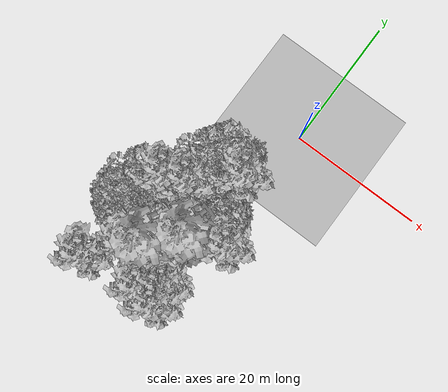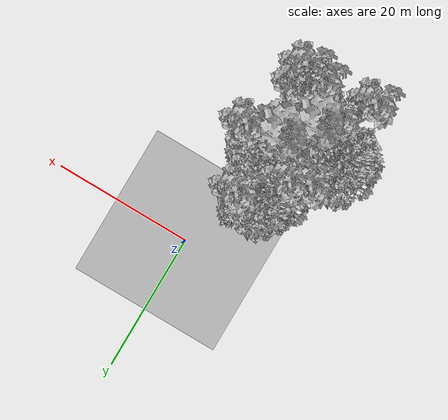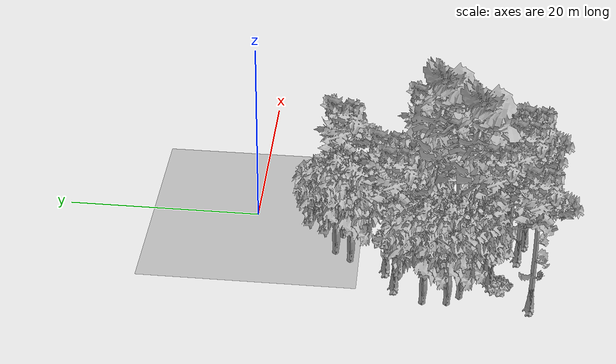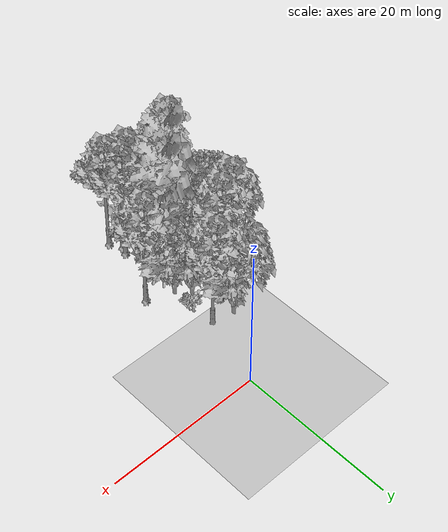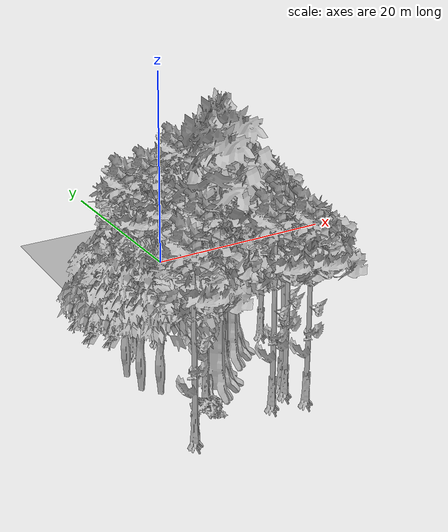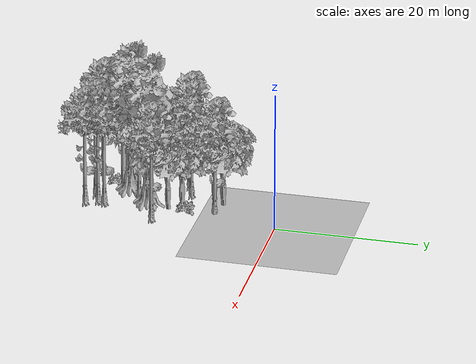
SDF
<sdf version="1.7">
 <world name="default">
  <model name="ground_plane">
   <static>1</static>
   <link name="link">
    <collision name="collision">
     <geometry><plane><normal>0 0 1</normal><size>100 100</size></plane></geometry>
     <surface><contact><ode><min_depth>0.01</min_depth><max_vel>0</max_vel></ode></contact></surface>
    </collision>
    <visual name="grass">
     <cast_shadows>0</cast_shadows>
     <geometry>
      <mesh>
       <scale>0.41000000000000003 0.41000000000000003 0.1</scale>
       <uri>file://grass_plane/meshes/grass_plane.dae</uri>
      </mesh>
     </geometry>
    </visual>
   </link>
  </model>
  <model name="Tree 84">
   <static>1</static>
   <pose>-2.7220117441366014 -9.177676038777747 0 1.57079 -0 0</pose>
   <link name="link">
    <collision name="collision">
     <geometry><mesh><scale>5 5 5</scale><uri>model://tree_9/meshes/tree_9.obj</uri></mesh></geometry>
    </collision>
    <visual name="visual">
     <geometry><mesh><scale>5 5 5</scale><uri>model://tree_9/meshes/tree_9.obj</uri></mesh></geometry>
    </visual>
   </link>
  </model>
  <model name="Tree 140">
   <static>1</static>
   <pose>-3.5608397065718975 -18.911041098502135 0 1.57079 -0 0</pose>
   <link name="link">
    <collision name="collision">
     <geometry><mesh><scale>5 5 5</scale><uri>model://tree_4/meshes/tree_4.obj</uri></mesh></geometry>
    </collision>
    <visual name="visual">
     <geometry><mesh><scale>5 5 5</scale><uri>model://tree_4/meshes/tree_4.obj</uri></mesh></geometry>
    </visual>
   </link>
  </model>
  <model name="Tree 159">
   <static>1</static>
   <pose>-2.783555532988295 -15.857061413306361 0 1.57079 -0 0</pose>
   <link name="link">
    <collision name="collision">
     <geometry><mesh><scale>5 5 5</scale><uri>model://tree_2/meshes/tree_2.obj</uri></mesh></geometry>
    </collision>
    <visual name="visual">
     <geometry><mesh><scale>5 5 5</scale><uri>model://tree_2/meshes/tree_2.obj</uri></mesh></geometry>
    </visual>
   </link>
  </model>
  <model name="Tree 181">
   <static>1</static>
   <pose>-6.9727555615401045 -10.246274128915722 0 1.57079 -0 0</pose>
   <link name="link">
    <collision name="collision">
     <geometry><mesh><scale>5 5 5</scale><uri>model://tree_2/meshes/tree_2.obj</uri></mesh></geometry>
    </collision>
    <visual name="visual">
     <geometry><mesh><scale>5 5 5</scale><uri>model://tree_2/meshes/tree_2.obj</uri></mesh></geometry>
    </visual>
   </link>
  </model>
  <model name="Tree 182">
   <static>1</static>
   <pose>-7.042790322751536 -22.452291825213035 0 1.57079 -0 0</pose>
   <link name="link">
    <collision name="collision">
     <geometry><mesh><scale>5 5 5</scale><uri>model://tree_4/meshes/tree_4.obj</uri></mesh></geometry>
    </collision>
    <visual name="visual">
     <geometry><mesh><scale>5 5 5</scale><uri>model://tree_4/meshes/tree_4.obj</uri></mesh></geometry>
    </visual>
   </link>
  </model>
  <model name="Tree 189">
   <static>1</static>
   <pose>-5.8050835633143265 -8.681269433756626 0 1.57079 -0 0</pose>
   <link name="link">
    <collision name="collision">
     <geometry><mesh><scale>5 5 5</scale><uri>model://tree_2/meshes/tree_2.obj</uri></mesh></geometry>
    </collision>
    <visual name="visual">
     <geometry><mesh><scale>5 5 5</scale><uri>model://tree_2/meshes/tree_2.obj</uri></mesh></geometry>
    </visual>
   </link>
  </model>
  <model name="Tree 204">
   <static>1</static>
   <pose>-7.913164516298025 -13.836802595011413 0 1.57079 -0 0</pose>
   <link name="link">
    <collision name="collision">
     <geometry><mesh><scale>5 5 5</scale><uri>model://tree_9/meshes/tree_9.obj</uri></mesh></geometry>
    </collision>
    <visual name="visual">
     <geometry><mesh><scale>5 5 5</scale><uri>model://tree_9/meshes/tree_9.obj</uri></mesh></geometry>
    </visual>
   </link>
  </model>
  <model name="Tree 210">
   <static>1</static>
   <pose>-4.886920589332988 -26.97479200473081 0 1.57079 -0 0</pose>
   <link name="link">
    <collision name="collision">
     <geometry><mesh><scale>5 5 5</scale><uri>model://tree_9/meshes/tree_9.obj</uri></mesh></geometry>
    </collision>
    <visual name="visual">
     <geometry><mesh><scale>5 5 5</scale><uri>model://tree_9/meshes/tree_9.obj</uri></mesh></geometry>
    </visual>
   </link>
  </model>
  <model name="Tree 225">
   <static>1</static>
   <pose>-4.149420852794513 -14.181908517586436 0 1.57079 -0 0</pose>
   <link name="link">
    <collision name="collision">
     <geometry><mesh><scale>5 5 5</scale><uri>model://tree_2/meshes/tree_2.obj</uri></mesh></geometry>
    </collision>
    <visual name="visual">
     <geometry><mesh><scale>5 5 5</scale><uri>model://tree_2/meshes/tree_2.obj</uri></mesh></geometry>
    </visual>
   </link>
  </model>
  <model name="Tree 240">
   <static>1</static>
   <pose>-12.330793939111345 -28.034754387633765 0 1.57079 -0 0</pose>
   <link name="link">
    <collision name="collision">
     <geometry><mesh><scale>5 5 5</scale><uri>model://tree_9/meshes/tree_9.obj</uri></mesh></geometry>
    </collision>
    <visual name="visual">
     <geometry><mesh><scale>5 5 5</scale><uri>model://tree_9/meshes/tree_9.obj</uri></mesh></geometry>
    </visual>
   </link>
  </model>
  <model name="Tree 257">
   <static>1</static>
   <pose>-11.565295251363658 -21.250219013921956 0 1.57079 -0 0</pose>
   <link name="link">
    <collision name="collision">
     <geometry><mesh><scale>5 5 5</scale><uri>model://tree_2/meshes/tree_2.obj</uri></mesh></geometry>
    </collision>
    <visual name="visual">
     <geometry><mesh><scale>5 5 5</scale><uri>model://tree_2/meshes/tree_2.obj</uri></mesh></geometry>
    </visual>
   </link>
  </model>
  <model name="Tree 286">
   <static>1</static>
   <pose>-5.15922674330546 -20.68508485118914 0 1.57079 -0 0</pose>
   <link name="link">
    <collision name="collision">
     <geometry><mesh><scale>5 5 5</scale><uri>model://tree_9/meshes/tree_9.obj</uri></mesh></geometry>
    </collision>
    <visual name="visual">
     <geometry><mesh><scale>5 5 5</scale><uri>model://tree_9/meshes/tree_9.obj</uri></mesh></geometry>
    </visual>
   </link>
  </model>
  <model name="Tree 337">
   <static>1</static>
   <pose>-10.489471889079539 -14.795790264811572 0 1.57079 -0 0</pose>
   <link name="link">
    <collision name="collision">
     <geometry><mesh><scale>5 5 5</scale><uri>model://tree_9/meshes/tree_9.obj</uri></mesh></geometry>
    </collision>
    <visual name="visual">
     <geometry><mesh><scale>5 5 5</scale><uri>model://tree_9/meshes/tree_9.obj</uri></mesh></geometry>
    </visual>
   </link>
  </model>
  <model name="Tree 371">
   <static>1</static>
   <pose>-12.642415150354047 -20.035244155332997 0 1.57079 -0 0</pose>
   <link name="link">
    <collision name="collision">
     <geometry><mesh><scale>5 5 5</scale><uri>model://tree_2/meshes/tree_2.obj</uri></mesh></geometry>
    </collision>
    <visual name="visual">
     <geometry><mesh><scale>5 5 5</scale><uri>model://tree_2/meshes/tree_2.obj</uri></mesh></geometry>
    </visual>
   </link>
  </model>
  <model name="Tree 372">
   <static>1</static>
   <pose>-3.0648247561752413 -26.08221658848552 0 1.57079 -0 0</pose>
   <link name="link">
    <collision name="collision">
     <geometry><mesh><scale>5 5 5</scale><uri>model://tree_9/meshes/tree_9.obj</uri></mesh></geometry>
    </collision>
    <visual name="visual">
     <geometry><mesh><scale>5 5 5</scale><uri>model://tree_9/meshes/tree_9.obj</uri></mesh></geometry>
    </visual>
   </link>
  </model>
  <model name="Tree 388">
   <static>1</static>
   <pose>-9.100405342701379 -24.182311540960498 0 1.57079 -0 0</pose>
   <link name="link">
    <collision name="collision">
     <geometry><mesh><scale>5 5 5</scale><uri>model://tree_9/meshes/tree_9.obj</uri></mesh></geometry>
    </collision>
    <visual name="visual">
     <geometry><mesh><scale>5 5 5</scale><uri>model://tree_9/meshes/tree_9.obj</uri></mesh></geometry>
    </visual>
   </link>
  </model>
  <model name="Tree 394">
   <static>1</static>
   <pose>0.604795039134828 -17.36035169501664 0 1.57079 -0 0</pose>
   <link name="link">
    <collision name="collision">
     <geometry><mesh><scale>5 5 5</scale><uri>model://tree_9/meshes/tree_9.obj</uri></mesh></geometry>
    </collision>
    <visual name="visual">
     <geometry><mesh><scale>5 5 5</scale><uri>model://tree_9/meshes/tree_9.obj</uri></mesh></geometry>
    </visual>
   </link>
  </model>
  <model name="Tree 451">
   <static>1</static>
   <pose>-2.698188105010999 -25.078943845553205 0 1.57079 -0 0</pose>
   <link name="link">
    <collision name="collision">
     <geometry><mesh><scale>5 5 5</scale><uri>model://tree_9/meshes/tree_9.obj</uri></mesh></geometry>
    </collision>
    <visual name="visual">
     <geometry><mesh><scale>5 5 5</scale><uri>model://tree_9/meshes/tree_9.obj</uri></mesh></geometry>
    </visual>
   </link>
  </model>
  <model name="Tree 458">
   <static>1</static>
   <pose>-2.2477638729897507 -27.73252026098537 0 1.57079 -0 0</pose>
   <link name="link">
    <collision name="collision">
     <geometry><mesh><scale>5 5 5</scale><uri>model://tree_9/meshes/tree_9.obj</uri></mesh></geometry>
    </collision>
    <visual name="visual">
     <geometry><mesh><scale>5 5 5</scale><uri>model://tree_9/meshes/tree_9.obj</uri></mesh></geometry>
    </visual>
   </link>
  </model>
  <model name="Tree 478">
   <static>1</static>
   <pose>-12.75561113001239 -17.66522028599232 0 1.57079 -0 0</pose>
   <link name="link">
    <collision name="collision">
     <geometry><mesh><scale>5 5 5</scale><uri>model://tree_2/meshes/tree_2.obj</uri></mesh></geometry>
    </collision>
    <visual name="visual">
     <geometry><mesh><scale>5 5 5</scale><uri>model://tree_2/meshes/tree_2.obj</uri></mesh></geometry>
    </visual>
   </link>
  </model>
  <model name="Bush 7">
   <static>1</static>
   <pose>-9.57918390828786 -25.19662823214751 0 1.57079 -0 0</pose>
   <link name="link">
    <collision name="collision">
     <geometry><mesh><scale>2 2 2</scale><uri>model://bush_2/meshes/bush_2.obj</uri></mesh></geometry>
    </collision>
    <visual name="visual">
     <geometry><mesh><scale>5 5 5</scale><uri>model://bush_2/meshes/bush_2.obj</uri></mesh></geometry>
    </visual>
   </link>
  </model>
  <model name="Bush 59">
   <static>1</static>
   <pose>-3.276533495634702 -13.508230845118788 0 1.57079 -0 0</pose>
   <link name="link">
    <collision name="collision">
     <geometry><mesh><scale>2 2 2</scale><uri>model://bush_2/meshes/bush_2.obj</uri></mesh></geometry>
    </collision>
    <visual name="visual">
     <geometry><mesh><scale>5 5 5</scale><uri>model://bush_2/meshes/bush_2.obj</uri></mesh></geometry>
    </visual>
   </link>
  </model>
 </world>
</sdf>
